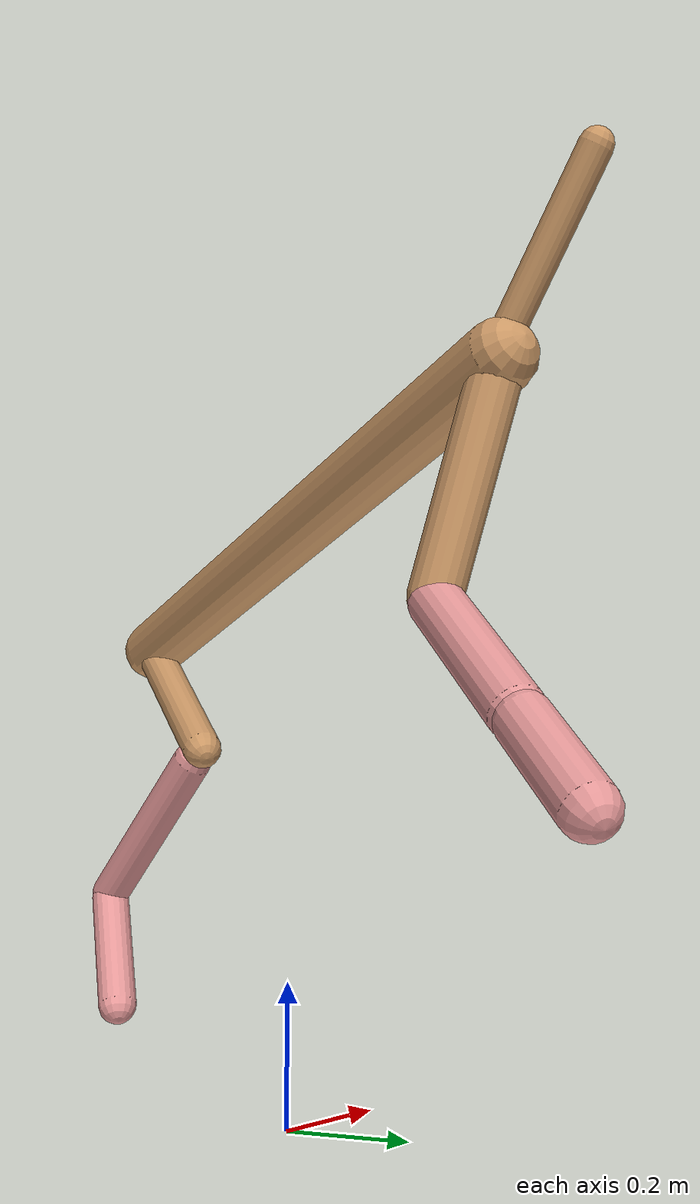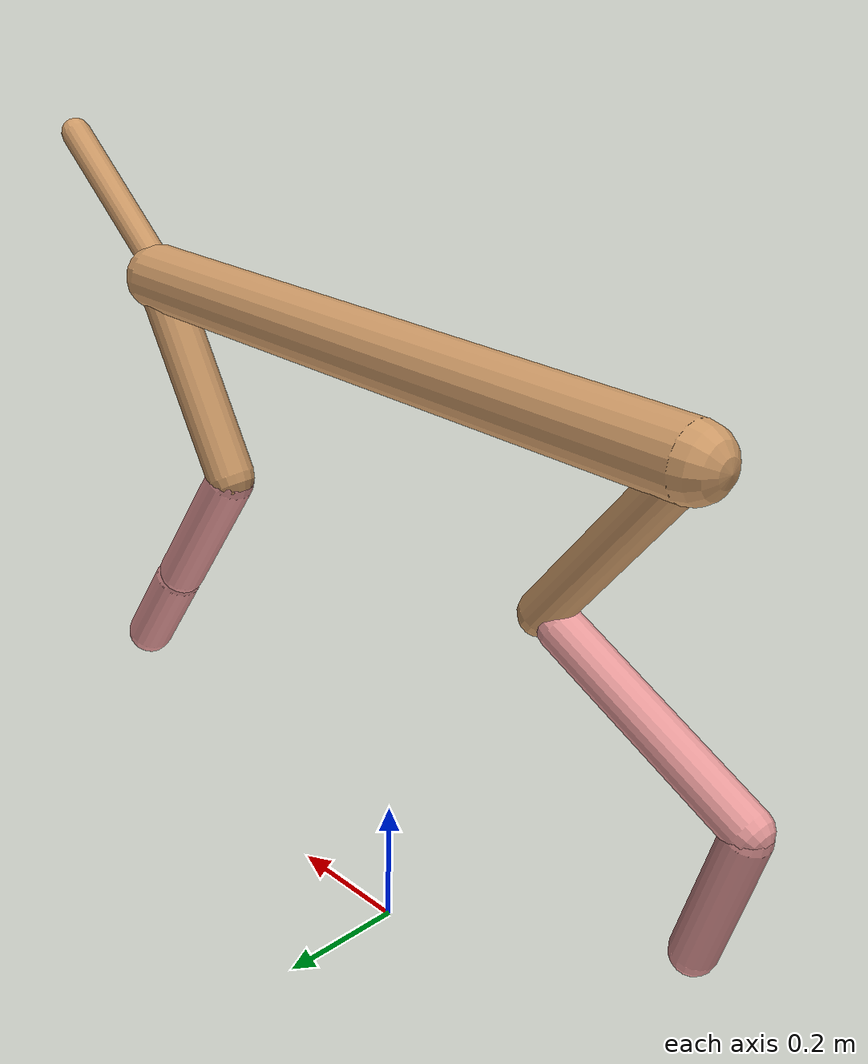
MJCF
<mujoco model="cheetah">
  <compiler angle="radian" coordinate="local" inertiafromgeom="true" settotalmass="14" />
  <default>
    <joint armature=".1" damping=".01" limited="true" solimplimit="0 .8 .03" solreflimit=".02 1" stiffness="8" />
    <geom conaffinity="0" condim="3" contype="1" friction="0.8 .1 .1" rgba="0.8 0.6 .4 1" solimp="0.0 0.8 0.01" solref="0.02 1" />
    <motor ctrllimited="true" ctrlrange="-1 1" />
  </default>
  <size nstack="300000" nuser_geom="1" />
  <option gravity="0 0 -9.81" timestep="0.01" />
  <worldbody>
    <body name="torso" pos="0.0 0.0 0.9327836081745164">
      <joint armature="0" axis="1 0 0" damping="0" limited="false" name="ignorex" pos="0 0 0" stiffness="0" type="slide" />
      <joint armature="0" axis="0 0 1" damping="0" limited="false" name="ignorez" pos="0 0 0" stiffness="0" type="slide" />
      <joint armature="0" axis="0 1 0" damping="0" limited="false" name="ignorey" pos="0 0 0" stiffness="0" type="hinge" />
      <geom fromto="-0.5 0.0 0.0 0.5447506935034847 0.0 0.0" name="torso" size="0.05268326146791455" type="capsule" />
      <geom axisangle="0 1 0 .87" name="head" pos="0.6447506935034847 0.0 0.1" size="0.02404109914883325 0.15" type="capsule" />

      <body name="bthigh" pos="-.5 0 0">
        <joint axis="0 1 0" damping="6" name="bthigh" pos="0 0 0" range="-.52 1.05" stiffness="240" type="hinge" />
        <geom axisangle="0 1 0 -3.8" name="bthigh" pos="0.11228205476886251 0.0 -0.14596667119952125" size="0.03290171761056441 0.16514406757680683" type="capsule" />
        <body name="bshin" pos="0.184564109537725 0.0 -0.2819333423990425">
          <joint axis="0 1 0" damping="4.5" name="bshin" pos="0 0 0" range="-.785 .785" stiffness="180" type="hinge" />
          <geom axisangle="0 1 0 -2.03" name="bshin" pos="-0.1586386914945198 0.0 -0.0793193457472599" rgba="0.9 0.6 0.6 1" size="0.03290171761056441 0.1708386905966967" type="capsule" />
          <body name="bfoot" pos="-0.3172773829890396 0.0 -0.1586386914945198">
            <joint axis="0 1 0" damping="3" name="bfoot" pos="0 0 0" range="-.4 .785" stiffness="120" type="hinge" />
            <geom axisangle="0 1 0 -.27" name="bfoot" pos="0.03385851333897653 0.0 -0.10947585979602412" rgba="0.9 0.6 0.6 1" size="0.03290171761056441 0.10705891277392994" type="capsule" />
            <inertial mass="10" />
          </body>
        </body>
      </body>
      <body name="fthigh" pos="0.5447506935034847 0.0 0.0">
        <joint axis="0 1 0" damping="4.5" name="fthigh" pos="0 0 0" range="-1.5 0.8" stiffness="180" type="hinge" />
        <geom axisangle="0 1 0 .52" name="fthigh" pos="-0.08631794743202935 0.0 -0.14797362416919316" size="0.038690670900922354 0.16538516724603627" type="capsule" />
        <body name="fshin" pos="-0.1726358948640587 0.0 -0.2959472483383863">
          <joint axis="0 1 0" damping="3" name="fshin" pos="0 0 0" range="-1.2 1.1" stiffness="120" type="hinge" />
          <geom axisangle="0 1 0 -.6" name="fshin" pos="0.08011194141177248 0.0 -0.1109242265701465" rgba="0.9 0.6 0.6 1" size="0.038690670900922354 0.1318107347975928" type="capsule" />
          <body name="ffoot" pos="0.16022388282354497 0.0 -0.221848453140293">
            <joint axis="0 1 0" damping="1.5" name="ffoot" pos="0 0 0" range="-3.1 -0.3" stiffness="60" type="hinge" />
            <geom axisangle="0 1 0 -.6" name="ffoot" pos="0.05421711843907968 0.0 -0.08433773979412396" rgba="0.9 0.6 0.6 1" size="0.038690670900922354 0.08704482486633489" type="capsule" />
            <inertial mass="10" />
          </body>
        </body>
      </body>
    </body>
  </worldbody>
  <actuator>
    <motor gear="120" joint="bthigh" name="bthigh" />
    <motor gear="90" joint="bshin" name="bshin" />
    <motor gear="60" joint="bfoot" name="bfoot" />
    <motor gear="120" joint="fthigh" name="fthigh" />
    <motor gear="60" joint="fshin" name="fshin" />
    <motor gear="30" joint="ffoot" name="ffoot" />
  </actuator>
</mujoco>
